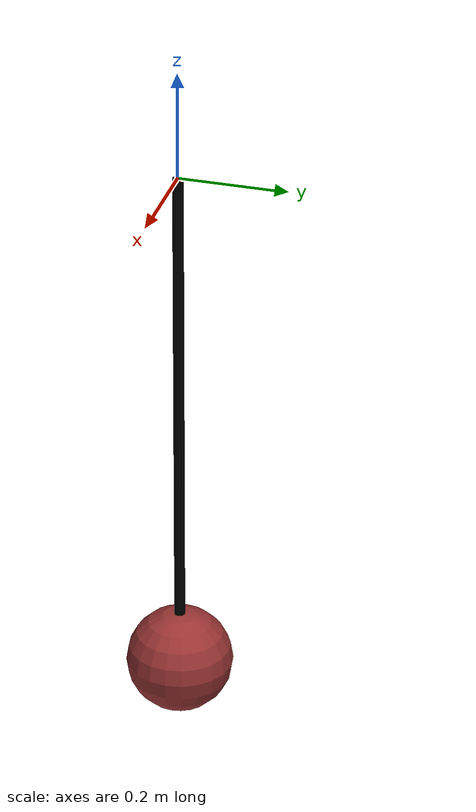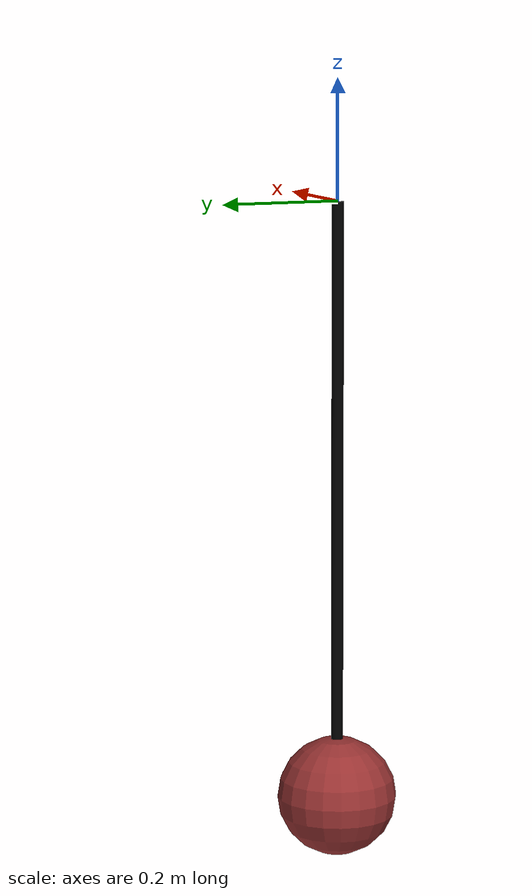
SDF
<?xml version="1.0"?>
<!-- from underactuated robotics - smaller dimensions -->
<sdf version="1.8">
  <model name='pendulum'>
    <link name="upper_arm">
      <inertial>
        <pose>0 0 -1 0 0 0</pose>
        <mass>1</mass>
        <inertia>
          <ixx>0</ixx>
          <ixy>0</ixy>
          <ixz>0</ixz>
          <iyy>0</iyy>
          <iyz>0</iyz>
          <izz>0</izz>
        </inertia>
      </inertial>
      <visual name="arm">
        <pose>0 0 -.5 0 0 0</pose>
        <geometry>
           <cylinder>
            <length>1</length>
            <radius>.01</radius>
           </cylinder>
        </geometry>
        <material><diffuse>0 0 0 1</diffuse></material>
      </visual>
      <visual name="point_mass">
        <pose>0 0 -1 0 0 0</pose>
        <geometry>
          <sphere>
            <radius>.1</radius>
          </sphere>
        </geometry>
        <material><diffuse>.6 .2 .2 1</diffuse></material>
      </visual>
    </link>

    <joint name="shoulder" type="revolute">
      <parent>world</parent>
      <child>upper_arm</child>
      <axis>
        <xyz>0 1 0</xyz>
      </axis>
    </joint>
  </model>
</sdf>
